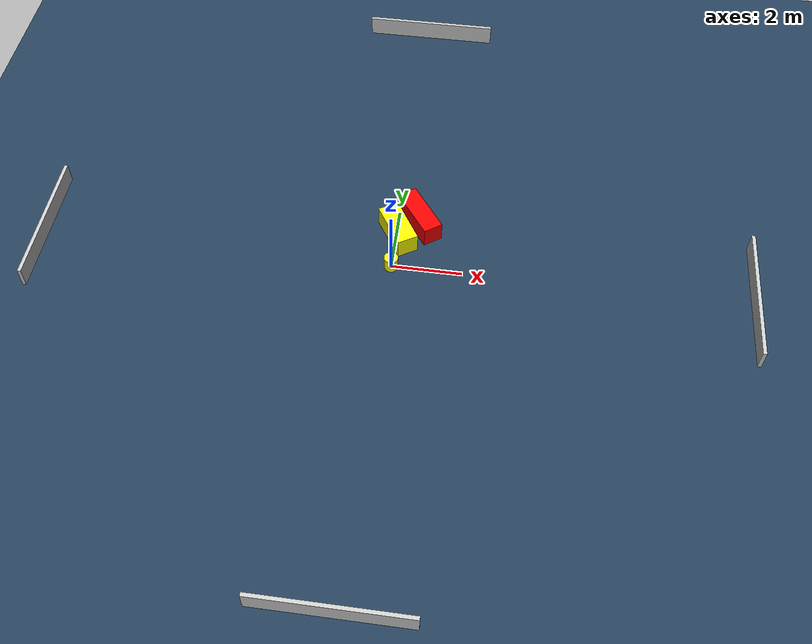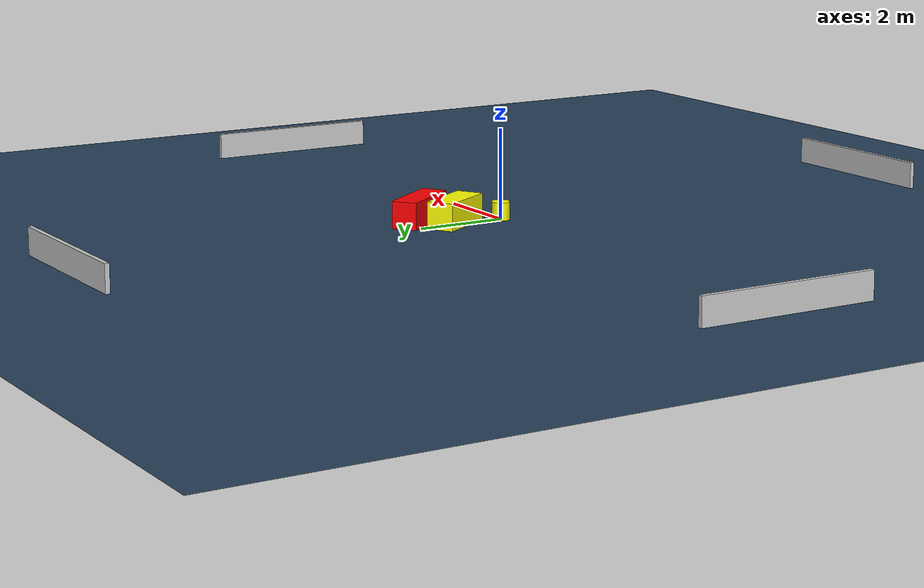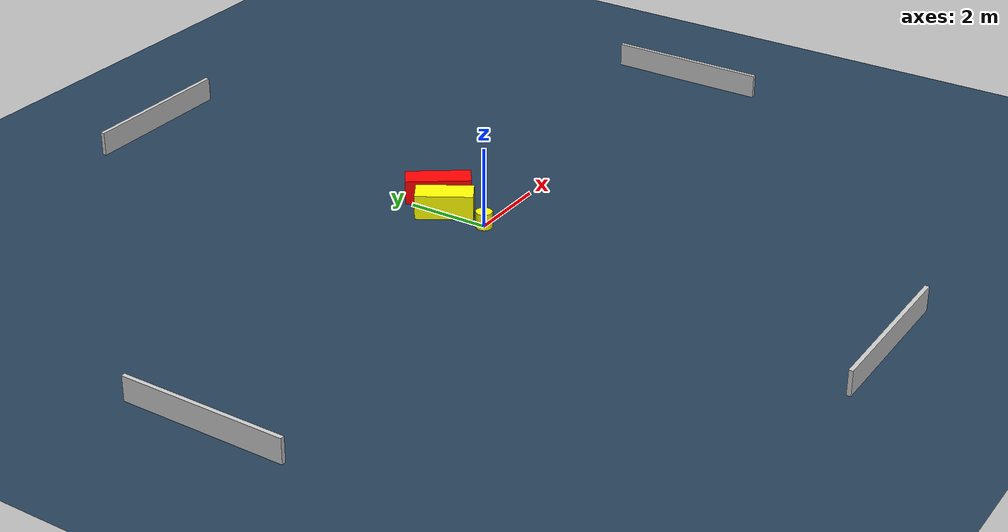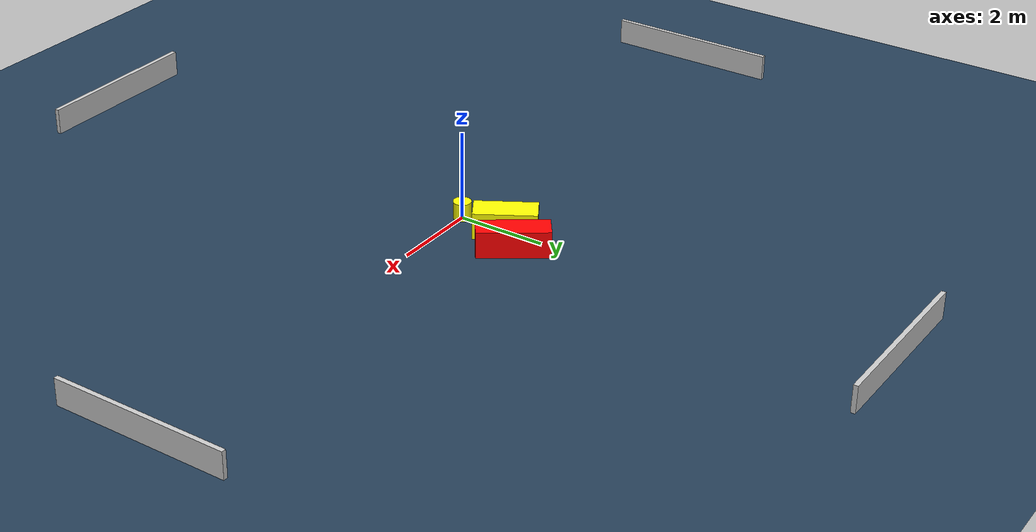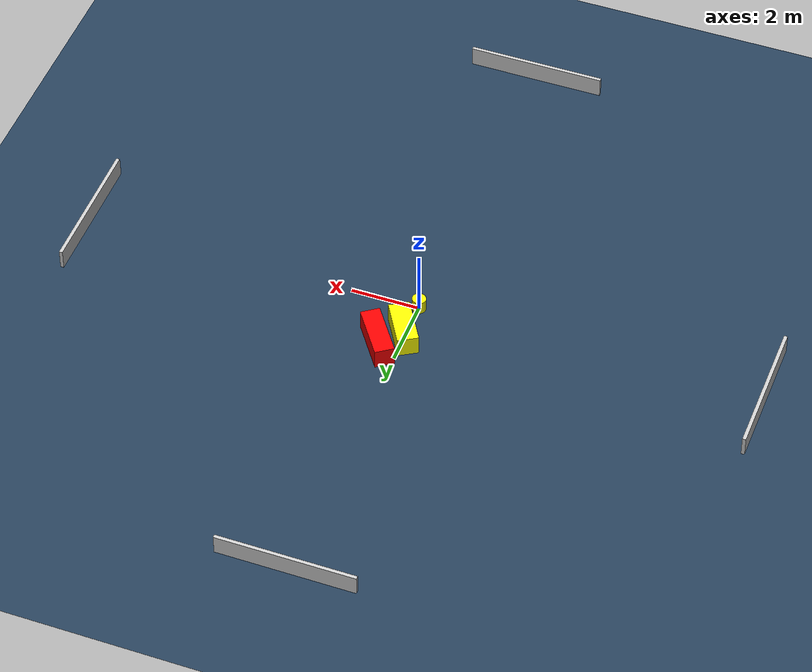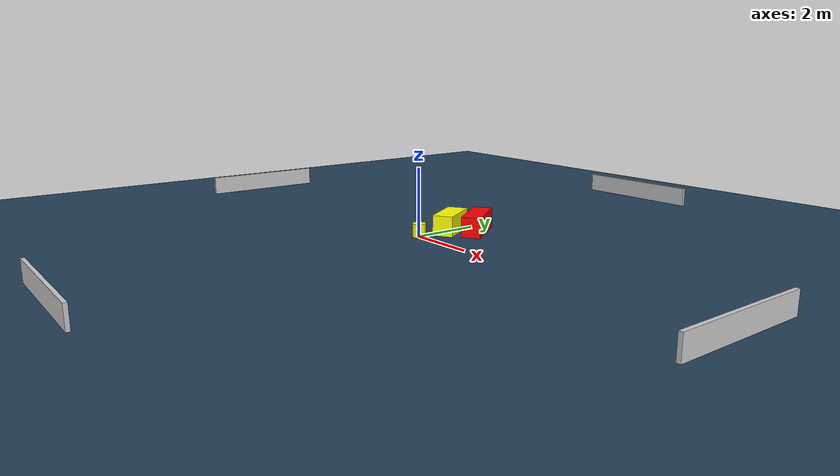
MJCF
<?xml version="1.0" ?>
<mujoco model="generated_environment">
  <option timestep="0.01" integrator="RK4" cone="elliptic"/>
  <default>
    <geom density="1"/>
  </default>
  <asset>
    <texture builtin="gradient" height="3072" name="skybox" rgb1="0.3 0.5 0.7" rgb2="0 0 0" type="skybox" width="512"/>
    <texture builtin="checker" height="300" name="groundplane" rgb1="0.2 0.3 0.4" rgb2="0.1 0.2 0.3" type="2d" width="300"/>
    <material name="groundplane" reflectance="0.2" texrepeat="5 5" texture="groundplane"/>
  </asset>
  <worldbody>
    <light dir="0 0 -1" directional="true" pos="0 0 1.5"/>
    <geom condim="3" friction="0.5 0.005 0.001" material="groundplane" name="floor" pos="0 0 0" size="0 0 0.05" type="plane"/>
    <body name="walls">
      <geom name="wall_1" condim="4" pos="-10.0 0.0 0.3" rgba="0.800000011920929 0.800000011920929 0.800000011920929 1.0" size="0.05 2.0 0.3" type="box"/>
      <geom name="wall_2" condim="4" pos="10.0 0.0 0.3" rgba="0.800000011920929 0.800000011920929 0.800000011920929 1.0" size="0.05 2.0 0.3" type="box"/>
      <geom name="wall_3" condim="4" pos="0.0 -10.0 0.3" rgba="0.800000011920929 0.800000011920929 0.800000011920929 1.0" size="2.0 0.05 0.3" type="box"/>
      <geom name="wall_4" condim="4" pos="0.0 10.0 0.3" rgba="0.800000011920929 0.800000011920929 0.800000011920929 1.0" size="2.0 0.05 0.3" type="box"/>
    </body>
    <body name="robot">
      <joint name="joint_x" type="slide" pos="0 0 0" axis="1 0 0"/>
      <joint name="joint_y" type="slide" pos="0 0 0" axis="0 1 0"/>
      <geom name="robot" type="cylinder" pos="0.0 0.0 0.2" size="0.2 0.2 0.0" mass="5.0" friction="1.0 0.005 0.0001" condim="4" rgba="1.0 1.0 0.0 1.0"/>
    </body>
    <body name="obstacle_1_movable">
      <geom name="obstacle_1_movable" condim="4" pos="0.042255681813663105 1.134500849722433 0.3" euler="0 0 121.10362886332814" friction="0.0 0.005 0.001" rgba="1.0 1.0 0.0 1.0" size="0.6898864405473363 0.30443030437676505 0.3" type="box" mass="0.1"/>
      <joint type="free"/>
    </body>
    <body name="obstacle_2_static">
      <geom name="obstacle_2_static" condim="4" pos="0.6020254026428916 1.6968864270622679 0.3" euler="0 0 215.5976963789618" friction="0.0 0.005 0.001" rgba="1.0 0.0 0.0 1.0" size="0.28287369754202984 0.7872694193412002 0.3" type="box"/>
    </body>
  </worldbody>
  <actuator>
    <motor name="actuator_x" joint="joint_x" gear="1" ctrlrange="-1 1"/>
    <motor name="actuator_y" joint="joint_y" gear="1" ctrlrange="-1 1"/>
  </actuator>
</mujoco>
